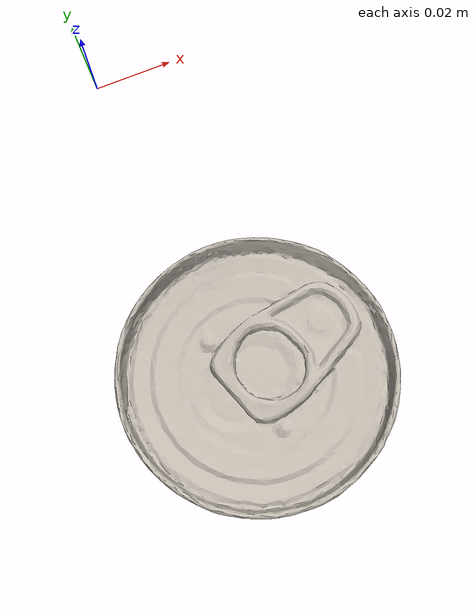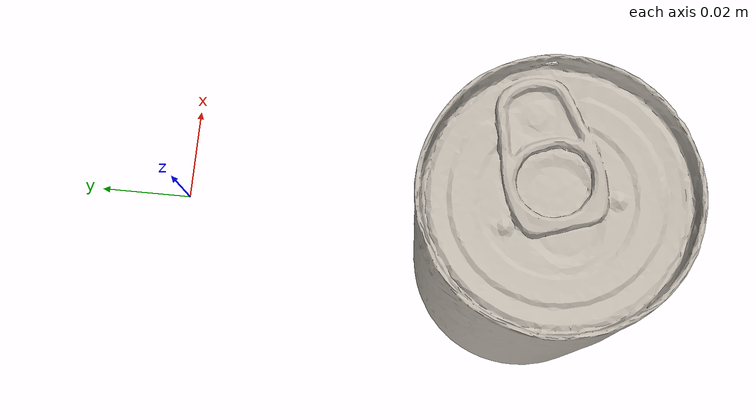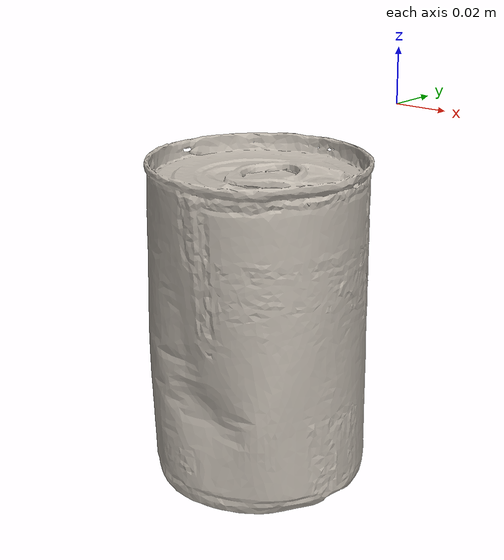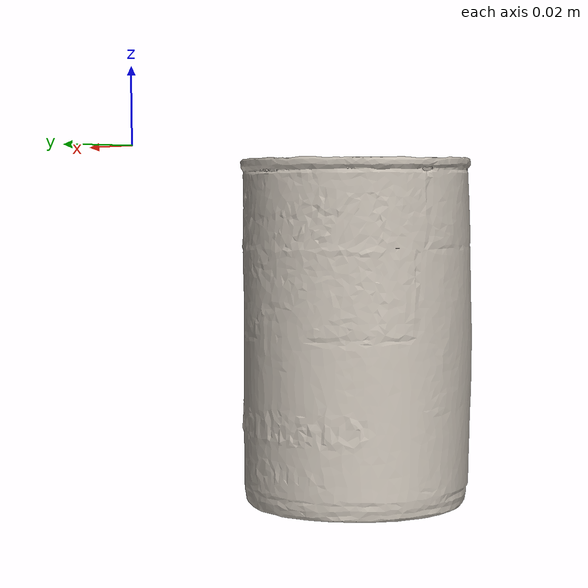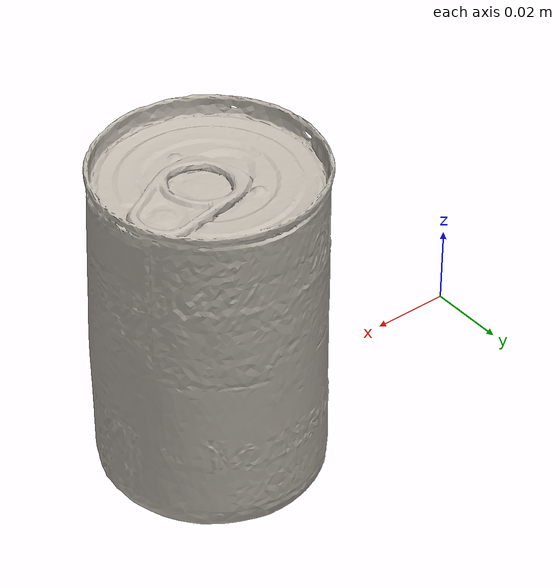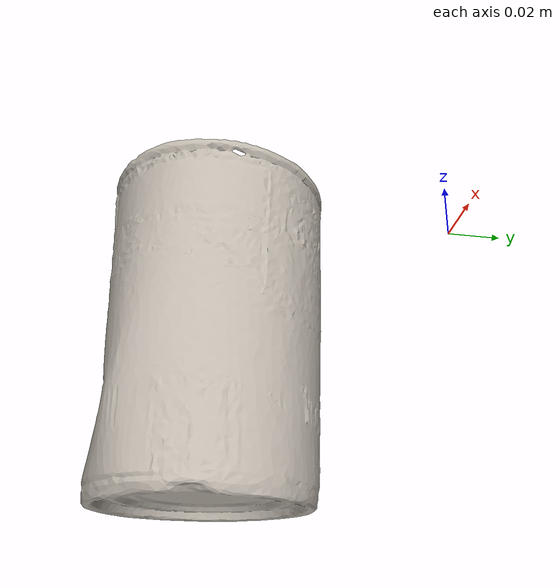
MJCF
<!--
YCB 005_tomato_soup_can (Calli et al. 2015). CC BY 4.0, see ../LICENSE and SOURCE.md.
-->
<mujoco model="ycb_005_tomato_soup_can">
  <compiler angle="radian" meshdir="." texturedir="."/>
  <asset>
    <texture name="tomato_soup_can" type="2d" file="texture_map.png"/>
    <material name="tomato_soup_can" texture="tomato_soup_can"/>
    <mesh name="tomato_soup_can" file="textured.obj"/>
  </asset>
  <worldbody>
    <body name="tomato_soup_can">
      <freejoint name="tomato_soup_can_free"/>
      <geom name="tomato_soup_can_visual" type="mesh" mesh="tomato_soup_can" material="tomato_soup_can" pos="0.0092 -0.0840 -0.0510"
            contype="0" conaffinity="0" group="2" mass="0"/>
      <geom name="tomato_soup_can_collision" type="cylinder" size="0.0339 0.0509" mass="0.349"
            group="3" condim="4" friction="0.9 0.005 0.0001"/>
    </body>
  </worldbody>
</mujoco>
